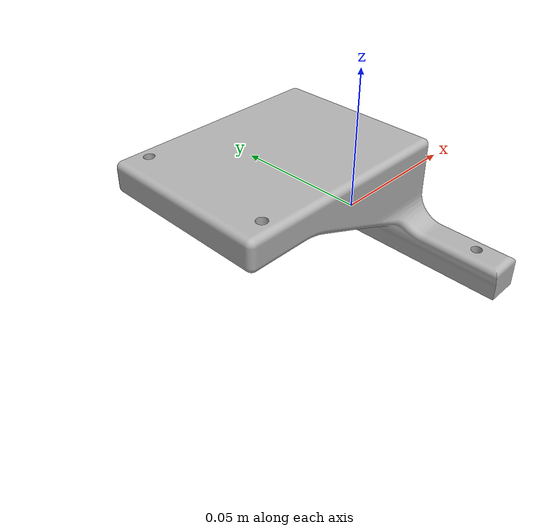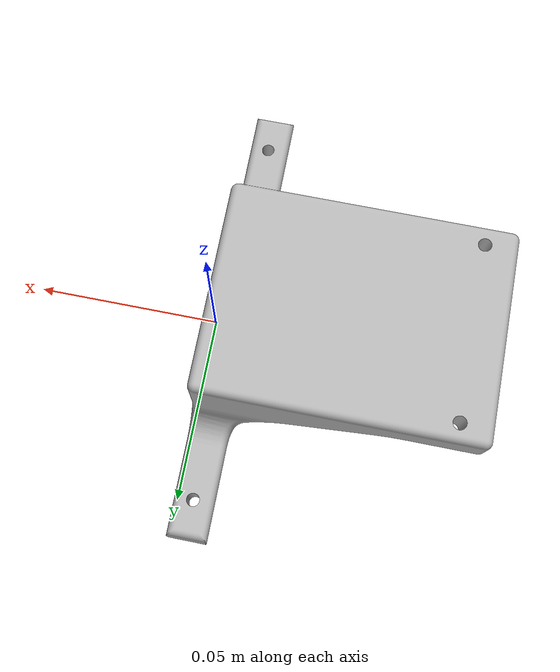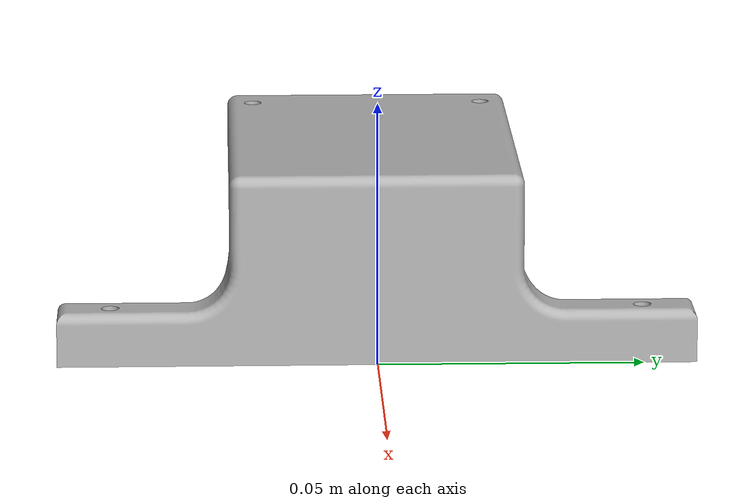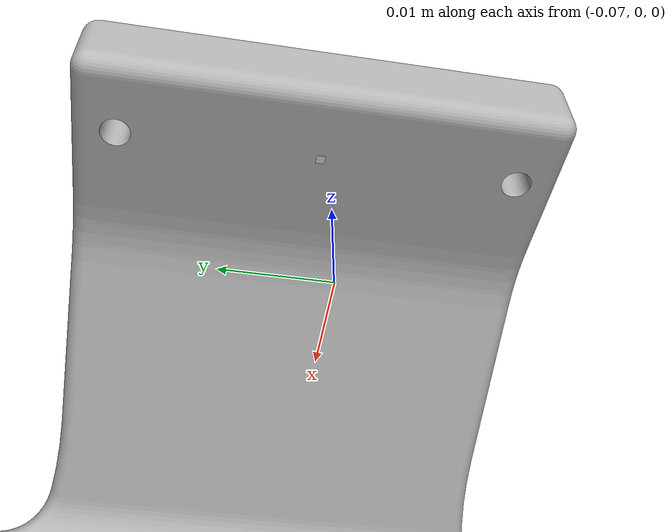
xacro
<?xml version="1.0" encoding="utf-8"?>
<robot xmlns:xacro="http://www.ros.org/wiki/xacro" name="camera_support">
    <!-- Including xacro -->
    <xacro:include filename="$(find camera_support)/urdf/camera_support.urdf.xacro"/>

    <!-- Virtual link for visualization -->
    <link name="world"/>

    <!-- Calling the xacro -->
    <xacro:camera_support parent="world">
        <origin xyz="0 0 0" rpy="0 0 0"/>
    </xacro:camera_support>

</robot>

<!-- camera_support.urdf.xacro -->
<robot name="camera_support" xmlns:xacro="http://ros.org/wiki/xacro">

    <xacro:macro name="camera_support" params="parent *origin">

    <joint name="supporto_cam_base_joint" type="fixed">
        <parent link="${parent}"/>
        <child link="base"/>
        <xacro:insert_block name="origin"/>
    </joint>

    <link
        name="base">
        <inertial>
            <origin
                xyz="-0.024968 -1.2433E-07 0.023136"
                rpy="0 0 0" />
            <mass
                value="0.080064" />
            <inertia
                ixx="3.9197E-05"
                ixy="1.1651E-10"
                ixz="9.4191E-06"
                iyy="4.1104E-05"
                iyz="-1.2673E-10"
                izz="6.4713E-05" />
        </inertial>
        <visual>
            <origin
                xyz="0 0 0"
                rpy="0 0 0" />
            <geometry>
                <mesh
                    filename="package://camera_support/meshes/base.STL" />
            </geometry>
            <material
                name="">
                <color
                    rgba="0.69804 0.69804 0.69804 1" />
            </material>
        </visual>
        <collision>
            <origin
                xyz="0 0 0"
                rpy="0 0 0" />
            <geometry>
                <mesh
                    filename="package://camera_support/meshes/base.STL" />
            </geometry>
        </collision>
    </link>
    <link
        name="cam">
        <inertial>
            <origin
                xyz="-5E-05 -4.3708E-19 0"
                rpy="0 0 0" />
            <mass
                value="1E-07" />
            <inertia
                ixx="1.6667E-14"
                ixy="-4.7178E-34"
                ixz="-5.2119E-32"
                iyy="8.4167E-15"
                iyz="-1.5126E-30"
                izz="8.4167E-15" />
        </inertial>
        <visual>
            <origin
                xyz="0 0 0"
                rpy="0 0 0" />
            <geometry>
                <mesh
                    filename="package://camera_support/meshes/cam.STL" />
            </geometry>
            <material
                name="">
                <color
                    rgba="0.79216 0.81961 0.93333 1" />
            </material>
        </visual>
        <collision>
            <origin
                xyz="0 0 0"
                rpy="0 0 0" />
            <geometry>
                <mesh
                    filename="package://camera_support/meshes/cam.STL" />
            </geometry>
        </collision>
    </link>
    <joint
        name="cam"
        type="fixed">
        <origin
            xyz="-0.0645 0 0.0259"
            rpy="0 1.5708 0" />
        <parent
            link="base" />
        <child
            link="cam" />
        <axis
            xyz="0 0 0" />
    </joint>

    </xacro:macro>
</robot>
